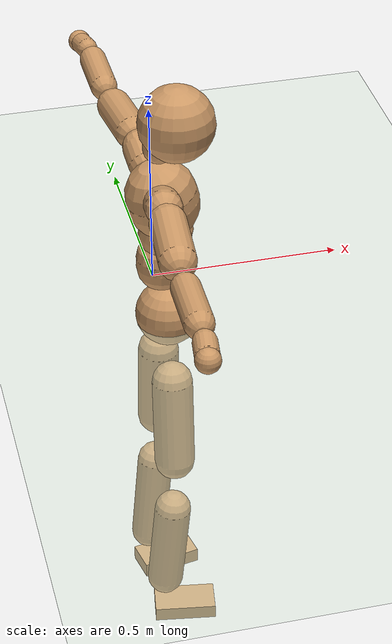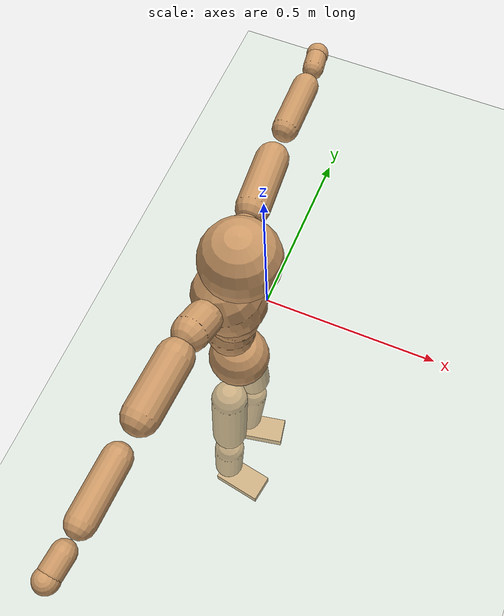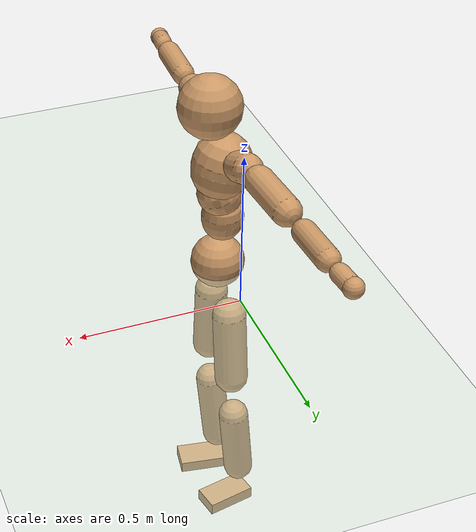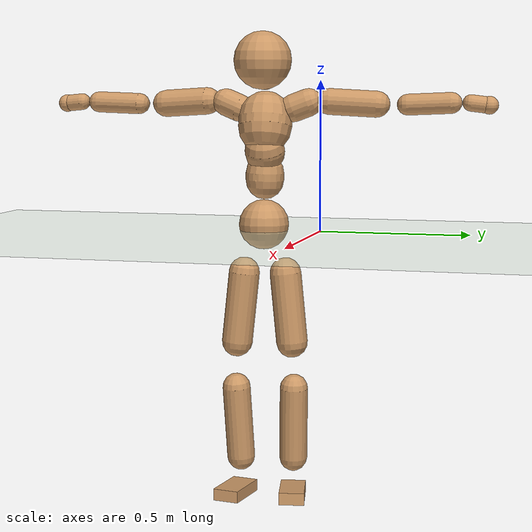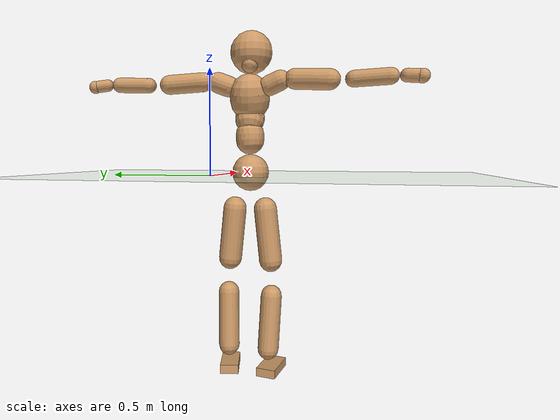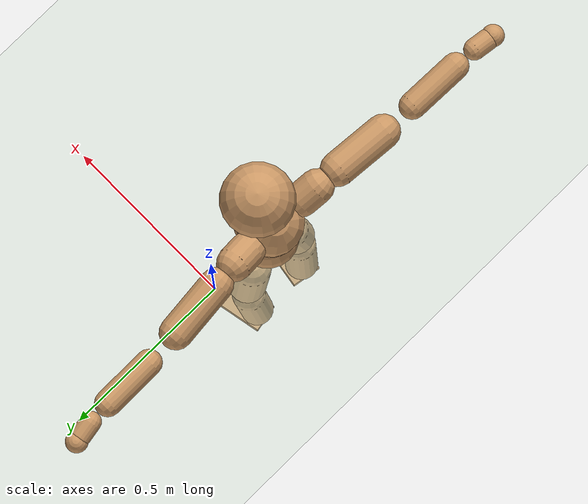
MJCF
<mujoco model="humanoid">
  <compiler coordinate="local" angle="radian"/>
  <default>
    <joint damping="0.0" armature="0.01" stiffness="0.0" limited="true"/>
    <geom conaffinity="1" condim="3" contype="7" margin="0.001" rgba="0.8 0.6 .4 1"/>
  </default>
  <asset>
    <texture type="skybox" builtin="gradient" rgb1=".4 .5 .6" rgb2="0 0 0" width="100" height="100"/>
    <texture builtin="flat" height="1278" mark="cross" markrgb="1 1 1" name="texgeom" random="0.01" rgb1="0.8 0.6 0.4" rgb2="0.8 0.6 0.4" type="cube" width="127"/>
    <texture builtin="checker" height="100" name="texplane" rgb1="0 0 0" rgb2="0.8 0.8 0.8" type="2d" width="100"/>
    <material name="MatPlane" reflectance="0.5" shininess="1" specular="1" texrepeat="60 60" texture="texplane"/>
    <material name="geom" texture="texgeom" texuniform="true"/>
  </asset>
  <worldbody>
    <light cutoff="100" diffuse="1 1 1" dir="-0 0 -1.3" directional="true" exponent="1" pos="0 0 1.3" specular=".1 .1 .1"/>
    <geom conaffinity="1" condim="3" name="floor" pos="0 0 0" rgba="0.8 0.9 0.8 1" size="100 100 .2" type="plane" material="MatPlane"/>
    <body name="Pelvis" pos="-0.0019 -0.1955 0.0183">
      <freejoint name="Pelvis"/>
      <geom type="sphere" contype="1" conaffinity="1" density="500" size="0.0843" pos="0.0000 0.0000 0.0000" name="Pelvis"/>
      <body name="L_Hip" pos="-0.0119 0.0646 -0.0873">
        <joint name="L_Hip_x" type="hinge" pos="0 0 0" axis="1 0 0" stiffness="800" damping="80" armature="0.02" range="-180.0000 180.0000"/>
        <joint name="L_Hip_y" type="hinge" pos="0 0 0" axis="0 1 0" stiffness="800" damping="80" armature="0.02" range="-180.0000 180.0000"/>
        <joint name="L_Hip_z" type="hinge" pos="0 0 0" axis="0 0 1" stiffness="800" damping="80" armature="0.02" range="-180.0000 180.0000"/>
        <geom type="capsule" contype="1" conaffinity="1" density="500" fromto="-0.0005 0.0075 -0.0788 -0.0020 0.0301 -0.3150" size="0.0535" name="L_Hip"/>
        <body name="L_Knee" pos="-0.0025 0.0376 -0.3938">
          <joint name="L_Knee_x" type="hinge" pos="0 0 0" axis="1 0 0" stiffness="800" damping="80" armature="0.02" range="-180.0000 180.0000"/>
          <joint name="L_Knee_y" type="hinge" pos="0 0 0" axis="0 1 0" stiffness="800" damping="80" armature="0.02" range="-180.0000 180.0000"/>
          <joint name="L_Knee_z" type="hinge" pos="0 0 0" axis="0 0 1" stiffness="800" damping="80" armature="0.02" range="-180.0000 180.0000"/>
          <geom type="capsule" contype="1" conaffinity="1" density="500" fromto="-0.0081 -0.0024 -0.0835 -0.0325 -0.0098 -0.3341" size="0.0477" name="L_Knee"/>
          <body name="L_Ankle" pos="-0.0406 -0.0122 -0.4177">
            <joint name="L_Ankle_x" type="hinge" pos="0 0 0" axis="1 0 0" stiffness="800" damping="80" armature="0.02" range="-180.0000 180.0000"/>
            <joint name="L_Ankle_y" type="hinge" pos="0 0 0" axis="0 1 0" stiffness="800" damping="80" armature="0.02" range="-180.0000 180.0000"/>
            <joint name="L_Ankle_z" type="hinge" pos="0 0 0" axis="0 0 1" stiffness="800" damping="80" armature="0.02" range="-180.0000 180.0000"/>
            <geom type="box" contype="1" conaffinity="1" density="500" pos="0.0575 0.0113 -0.0293" size="0.0795 0.0429 0.0209" quat="0.9953 0.0000 0.0000 0.0967" name="L_Ankle"/>
            <body name="L_Toe" pos="0.115 0.0226 -0.0585">
              <joint name="L_Toe_x" type="hinge" pos="0 0 0" axis="1 0 0" stiffness="500" damping="50" armature="0.02" range="-180.0000 180.0000"/>
              <joint name="L_Toe_y" type="hinge" pos="0 0 0" axis="0 1 0" stiffness="500" damping="50" armature="0.02" range="-180.0000 180.0000"/>
              <joint name="L_Toe_z" type="hinge" pos="0 0 0" axis="0 0 1" stiffness="500" damping="50" armature="0.02" range="-180.0000 180.0000"/>
              <geom type="box" contype="1" conaffinity="1" density="500" pos="0.0000 0.0000 0.0292" size="0.0009 0.0022 0.001" quat="0.9947 0.0000 0.0000 0.1033" name="L_Toe"/>
            </body>
          </body>
        </body>
      </body>
      <body name="R_Hip" pos="-0.0071 -0.0629 -0.0867">
        <joint name="R_Hip_x" type="hinge" pos="0 0 0" axis="1 0 0" stiffness="800" damping="80" armature="0.02" range="-180.0000 180.0000"/>
        <joint name="R_Hip_y" type="hinge" pos="0 0 0" axis="0 1 0" stiffness="800" damping="80" armature="0.02" range="-180.0000 180.0000"/>
        <joint name="R_Hip_z" type="hinge" pos="0 0 0" axis="0 0 1" stiffness="800" damping="80" armature="0.02" range="-180.0000 180.0000"/>
        <geom type="capsule" contype="1" conaffinity="1" density="500" fromto="-0.0010 -0.0088 -0.0803 -0.0038 -0.0353 -0.3211" size="0.0527" name="R_Hip"/>
        <body name="R_Knee" pos="-0.0048 -0.0442 -0.4014">
          <joint name="R_Knee_x" type="hinge" pos="0 0 0" axis="1 0 0" stiffness="800" damping="80" armature="0.02" range="-180.0000 180.0000"/>
          <joint name="R_Knee_y" type="hinge" pos="0 0 0" axis="0 1 0" stiffness="800" damping="80" armature="0.02" range="-180.0000 180.0000"/>
          <joint name="R_Knee_z" type="hinge" pos="0 0 0" axis="0 0 1" stiffness="800" damping="80" armature="0.02" range="-180.0000 180.0000"/>
          <geom type="capsule" contype="1" conaffinity="1" density="500" fromto="-0.0074 0.0033 -0.0836 -0.0298 0.0130 -0.3346" size="0.0482" name="R_Knee"/>
          <body name="R_Ankle" pos="-0.0372 0.0163 -0.4182">
            <joint name="R_Ankle_x" type="hinge" pos="0 0 0" axis="1 0 0" stiffness="800" damping="80" armature="0.02" range="-180.0000 180.0000"/>
            <joint name="R_Ankle_y" type="hinge" pos="0 0 0" axis="0 1 0" stiffness="800" damping="80" armature="0.02" range="-180.0000 180.0000"/>
            <joint name="R_Ankle_z" type="hinge" pos="0 0 0" axis="0 0 1" stiffness="800" damping="80" armature="0.02" range="-180.0000 180.0000"/>
            <geom type="box" contype="1" conaffinity="1" density="500" pos="0.0593 -0.0096 -0.0248" size="0.0824 0.0452 0.02" quat="0.9968 0.0000 0.0000 -0.0799" name="R_Ankle"/>
            <body name="R_Toe" pos="0.1185 -0.0191 -0.0496">
              <joint name="R_Toe_x" type="hinge" pos="0 0 0" axis="1 0 0" stiffness="500" damping="50" armature="0.02" range="-180.0000 180.0000"/>
              <joint name="R_Toe_y" type="hinge" pos="0 0 0" axis="0 1 0" stiffness="500" damping="50" armature="0.02" range="-180.0000 180.0000"/>
              <joint name="R_Toe_z" type="hinge" pos="0 0 0" axis="0 0 1" stiffness="500" damping="50" armature="0.02" range="-180.0000 180.0000"/>
              <geom type="box" contype="1" conaffinity="1" density="500" pos="0.0000 0.0000 0.0271" size="0.0009 0.0022 0.0011" quat="0.9975 0.0000 0.0000 -0.0705" name="R_Toe"/>
            </body>
          </body>
        </body>
      </body>
      <body name="Torso" pos="-0.0158 -0.0025 0.0993">
        <joint name="Torso_x" type="hinge" pos="0 0 0" axis="1 0 0" stiffness="1000" damping="100" armature="0.02" range="-180.0000 180.0000"/>
        <joint name="Torso_y" type="hinge" pos="0 0 0" axis="0 1 0" stiffness="1000" damping="100" armature="0.02" range="-180.0000 180.0000"/>
        <joint name="Torso_z" type="hinge" pos="0 0 0" axis="0 0 1" stiffness="1000" damping="100" armature="0.02" range="-180.0000 180.0000"/>
        <geom type="capsule" contype="1" conaffinity="1" density="500" fromto="0.0015 0.0025 0.0738 0.0010 0.0016 0.0492" size="0.0646" name="Torso"/>
        <body name="Spine" pos="0.0026 0.0041 0.123">
          <joint name="Spine_x" type="hinge" pos="0 0 0" axis="1 0 0" stiffness="1000" damping="100" armature="0.02" range="-180.0000 180.0000"/>
          <joint name="Spine_y" type="hinge" pos="0 0 0" axis="0 1 0" stiffness="1000" damping="100" armature="0.02" range="-180.0000 180.0000"/>
          <joint name="Spine_z" type="hinge" pos="0 0 0" axis="0 0 1" stiffness="1000" damping="100" armature="0.02" range="-180.0000 180.0000"/>
          <geom type="capsule" contype="1" conaffinity="1" density="500" fromto="0.0134 0.0012 0.0292 0.0089 0.0008 0.0194" size="0.0673" name="Spine"/>
          <body name="Chest" pos="0.0224 0.002 0.0486">
            <joint name="Chest_x" type="hinge" pos="0 0 0" axis="1 0 0" stiffness="1000" damping="100" armature="0.02" range="-180.0000 180.0000"/>
            <joint name="Chest_y" type="hinge" pos="0 0 0" axis="0 1 0" stiffness="1000" damping="100" armature="0.02" range="-180.0000 180.0000"/>
            <joint name="Chest_z" type="hinge" pos="0 0 0" axis="0 0 1" stiffness="1000" damping="100" armature="0.02" range="-180.0000 180.0000"/>
            <geom type="capsule" contype="1" conaffinity="1" density="500" fromto="-0.0214 -0.0015 0.0856 -0.0143 -0.0010 0.0570" size="0.0905" name="Chest"/>
            <body name="Neck" pos="-0.0366 -0.0047 0.2047">
              <joint name="Neck_x" type="hinge" pos="0 0 0" axis="1 0 0" stiffness="500" damping="50" armature="0.02" range="-180.0000 180.0000"/>
              <joint name="Neck_y" type="hinge" pos="0 0 0" axis="0 1 0" stiffness="500" damping="50" armature="0.02" range="-180.0000 180.0000"/>
              <joint name="Neck_z" type="hinge" pos="0 0 0" axis="0 0 1" stiffness="500" damping="50" armature="0.02" range="-180.0000 180.0000"/>
              <geom type="capsule" contype="1" conaffinity="1" density="500" fromto="0.0114 0.0010 0.0145 0.0456 0.0040 0.0579" size="0.0402" name="Neck"/>
              <body name="Head" pos="0.0569 0.005 0.0723">
                <joint name="Head_x" type="hinge" pos="0 0 0" axis="1 0 0" stiffness="500" damping="50" armature="0.02" range="-180.0000 180.0000"/>
                <joint name="Head_y" type="hinge" pos="0 0 0" axis="0 1 0" stiffness="500" damping="50" armature="0.02" range="-180.0000 180.0000"/>
                <joint name="Head_z" type="hinge" pos="0 0 0" axis="0 0 1" stiffness="500" damping="50" armature="0.02" range="-180.0000 180.0000"/>
                <geom type="sphere" contype="1" conaffinity="1" density="500" size="0.0965" pos="0.0000 0.0000 0.0000" name="Head"/>
              </body>
            </body>
            <body name="L_Thorax" pos="-0.0335 0.075 0.1126">
              <joint name="L_Thorax_x" type="hinge" pos="0 0 0" axis="1 0 0" stiffness="500" damping="50" armature="0.02" range="-180.0000 180.0000"/>
              <joint name="L_Thorax_y" type="hinge" pos="0 0 0" axis="0 1 0" stiffness="500" damping="50" armature="0.02" range="-180.0000 180.0000"/>
              <joint name="L_Thorax_z" type="hinge" pos="0 0 0" axis="0 0 1" stiffness="500" damping="50" armature="0.02" range="-180.0000 180.0000"/>
              <geom type="capsule" contype="1" conaffinity="1" density="500" fromto="-0.0015 0.0167 0.0063 -0.0059 0.0667 0.0253" size="0.047" name="L_Thorax"/>
              <body name="L_Shoulder" pos="-0.0074 0.0833 0.0316">
                <joint name="L_Shoulder_x" type="hinge" pos="0 0 0" axis="1 0 0" stiffness="500" damping="50" armature="0.02" range="-720.0000 720.0000"/>
                <joint name="L_Shoulder_y" type="hinge" pos="0 0 0" axis="0 1 0" stiffness="500" damping="50" armature="0.02" range="-720.0000 720.0000"/>
                <joint name="L_Shoulder_z" type="hinge" pos="0 0 0" axis="0 0 1" stiffness="500" damping="50" armature="0.02" range="-720.0000 720.0000"/>
                <geom type="capsule" contype="1" conaffinity="1" density="500" fromto="-0.0051 0.0528 -0.0029 -0.0203 0.2114 -0.0116" size="0.0438" name="L_Shoulder"/>
                <body name="L_Elbow" pos="-0.0254 0.2642 -0.0146">
                  <joint name="L_Elbow_x" type="hinge" pos="0 0 0" axis="1 0 0" stiffness="500" damping="50" armature="0.02" range="-720.0000 720.0000"/>
                  <joint name="L_Elbow_y" type="hinge" pos="0 0 0" axis="0 1 0" stiffness="500" damping="50" armature="0.02" range="-720.0000 720.0000"/>
                  <joint name="L_Elbow_z" type="hinge" pos="0 0 0" axis="0 0 1" stiffness="500" damping="50" armature="0.02" range="-720.0000 720.0000"/>
                  <geom type="capsule" contype="1" conaffinity="1" density="500" fromto="-0.0006 0.0482 0.0020 -0.0025 0.1927 0.0082" size="0.0349" name="L_Elbow"/>
                  <body name="L_Wrist" pos="-0.0031 0.2409 0.0102">
                    <joint name="L_Wrist_x" type="hinge" pos="0 0 0" axis="1 0 0" stiffness="300" damping="30" armature="0.02" range="-180.0000 180.0000"/>
                    <joint name="L_Wrist_y" type="hinge" pos="0 0 0" axis="0 1 0" stiffness="300" damping="30" armature="0.02" range="-180.0000 180.0000"/>
                    <joint name="L_Wrist_z" type="hinge" pos="0 0 0" axis="0 0 1" stiffness="300" damping="30" armature="0.02" range="-180.0000 180.0000"/>
                    <geom type="capsule" contype="1" conaffinity="1" density="500" fromto="-0.0025 0.0148 -0.0018 -0.0100 0.0592 -0.0073" size="0.0276" name="L_Wrist"/>
                    <body name="L_Hand" pos="-0.0125 0.074 -0.0092">
                      <joint name="L_Hand_x" type="hinge" pos="0 0 0" axis="1 0 0" stiffness="300" damping="30" armature="0.02" range="-180.0000 180.0000"/>
                      <joint name="L_Hand_y" type="hinge" pos="0 0 0" axis="0 1 0" stiffness="300" damping="30" armature="0.02" range="-180.0000 180.0000"/>
                      <joint name="L_Hand_z" type="hinge" pos="0 0 0" axis="0 0 1" stiffness="300" damping="30" armature="0.02" range="-180.0000 180.0000"/>
                      <geom type="sphere" contype="1" conaffinity="1" density="500" size="0.0298" pos="0.0000 0.0000 0.0000" name="L_Hand"/>
                    </body>
                  </body>
                </body>
              </body>
            </body>
            <body name="R_Thorax" pos="-0.0371 -0.0776 0.1106">
              <joint name="R_Thorax_x" type="hinge" pos="0 0 0" axis="1 0 0" stiffness="500" damping="50" armature="0.02" range="-180.0000 180.0000"/>
              <joint name="R_Thorax_y" type="hinge" pos="0 0 0" axis="0 1 0" stiffness="500" damping="50" armature="0.02" range="-180.0000 180.0000"/>
              <joint name="R_Thorax_z" type="hinge" pos="0 0 0" axis="0 0 1" stiffness="500" damping="50" armature="0.02" range="-180.0000 180.0000"/>
              <geom type="capsule" contype="1" conaffinity="1" density="500" fromto="-0.0020 -0.0170 0.0068 -0.0080 -0.0678 0.0272" size="0.0458" name="R_Thorax"/>
              <body name="R_Shoulder" pos="-0.0101 -0.0848 0.034">
                <joint name="R_Shoulder_x" type="hinge" pos="0 0 0" axis="1 0 0" stiffness="500" damping="50" armature="0.02" range="-720.0000 720.0000"/>
                <joint name="R_Shoulder_y" type="hinge" pos="0 0 0" axis="0 1 0" stiffness="500" damping="50" armature="0.02" range="-720.0000 720.0000"/>
                <joint name="R_Shoulder_z" type="hinge" pos="0 0 0" axis="0 0 1" stiffness="500" damping="50" armature="0.02" range="-720.0000 720.0000"/>
                <geom type="capsule" contype="1" conaffinity="1" density="500" fromto="-0.0038 -0.0504 -0.0031 -0.0150 -0.2015 -0.0124" size="0.0458" name="R_Shoulder"/>
                <body name="R_Elbow" pos="-0.0188 -0.2519 -0.0155">
                  <joint name="R_Elbow_x" type="hinge" pos="0 0 0" axis="1 0 0" stiffness="500" damping="50" armature="0.02" range="-720.0000 720.0000"/>
                  <joint name="R_Elbow_y" type="hinge" pos="0 0 0" axis="0 1 0" stiffness="500" damping="50" armature="0.02" range="-720.0000 720.0000"/>
                  <joint name="R_Elbow_z" type="hinge" pos="0 0 0" axis="0 0 1" stiffness="500" damping="50" armature="0.02" range="-720.0000 720.0000"/>
                  <geom type="capsule" contype="1" conaffinity="1" density="500" fromto="-0.0015 -0.0499 0.0017 -0.0059 -0.1996 0.0068" size="0.0356" name="R_Elbow"/>
                  <body name="R_Wrist" pos="-0.0074 -0.2495 0.0085">
                    <joint name="R_Wrist_x" type="hinge" pos="0 0 0" axis="1 0 0" stiffness="300" damping="30" armature="0.02" range="-180.0000 180.0000"/>
                    <joint name="R_Wrist_y" type="hinge" pos="0 0 0" axis="0 1 0" stiffness="300" damping="30" armature="0.02" range="-180.0000 180.0000"/>
                    <joint name="R_Wrist_z" type="hinge" pos="0 0 0" axis="0 0 1" stiffness="300" damping="30" armature="0.02" range="-180.0000 180.0000"/>
                    <geom type="capsule" contype="1" conaffinity="1" density="500" fromto="-0.0019 -0.0149 -0.0014 -0.0076 -0.0598 -0.0055" size="0.0285" name="R_Wrist"/>
                    <body name="R_Hand" pos="-0.0094 -0.0747 -0.0069">
                      <joint name="R_Hand_x" type="hinge" pos="0 0 0" axis="1 0 0" stiffness="300" damping="30" armature="0.02" range="-180.0000 180.0000"/>
                      <joint name="R_Hand_y" type="hinge" pos="0 0 0" axis="0 1 0" stiffness="300" damping="30" armature="0.02" range="-180.0000 180.0000"/>
                      <joint name="R_Hand_z" type="hinge" pos="0 0 0" axis="0 0 1" stiffness="300" damping="30" armature="0.02" range="-180.0000 180.0000"/>
                      <geom type="sphere" contype="1" conaffinity="1" density="500" size="0.0300" pos="0.0000 0.0000 0.0000" name="R_Hand"/>
                    </body>
                  </body>
                </body>
              </body>
            </body>
          </body>
        </body>
      </body>
    </body>
  </worldbody>
  <actuator>
    <motor name="L_Hip_x" joint="L_Hip_x" gear="500"/>
    <motor name="L_Hip_y" joint="L_Hip_y" gear="500"/>
    <motor name="L_Hip_z" joint="L_Hip_z" gear="500"/>
    <motor name="L_Knee_x" joint="L_Knee_x" gear="500"/>
    <motor name="L_Knee_y" joint="L_Knee_y" gear="500"/>
    <motor name="L_Knee_z" joint="L_Knee_z" gear="500"/>
    <motor name="L_Ankle_x" joint="L_Ankle_x" gear="500"/>
    <motor name="L_Ankle_y" joint="L_Ankle_y" gear="500"/>
    <motor name="L_Ankle_z" joint="L_Ankle_z" gear="500"/>
    <motor name="L_Toe_x" joint="L_Toe_x" gear="500"/>
    <motor name="L_Toe_y" joint="L_Toe_y" gear="500"/>
    <motor name="L_Toe_z" joint="L_Toe_z" gear="500"/>
    <motor name="R_Hip_x" joint="R_Hip_x" gear="500"/>
    <motor name="R_Hip_y" joint="R_Hip_y" gear="500"/>
    <motor name="R_Hip_z" joint="R_Hip_z" gear="500"/>
    <motor name="R_Knee_x" joint="R_Knee_x" gear="500"/>
    <motor name="R_Knee_y" joint="R_Knee_y" gear="500"/>
    <motor name="R_Knee_z" joint="R_Knee_z" gear="500"/>
    <motor name="R_Ankle_x" joint="R_Ankle_x" gear="500"/>
    <motor name="R_Ankle_y" joint="R_Ankle_y" gear="500"/>
    <motor name="R_Ankle_z" joint="R_Ankle_z" gear="500"/>
    <motor name="R_Toe_x" joint="R_Toe_x" gear="500"/>
    <motor name="R_Toe_y" joint="R_Toe_y" gear="500"/>
    <motor name="R_Toe_z" joint="R_Toe_z" gear="500"/>
    <motor name="Torso_x" joint="Torso_x" gear="500"/>
    <motor name="Torso_y" joint="Torso_y" gear="500"/>
    <motor name="Torso_z" joint="Torso_z" gear="500"/>
    <motor name="Spine_x" joint="Spine_x" gear="500"/>
    <motor name="Spine_y" joint="Spine_y" gear="500"/>
    <motor name="Spine_z" joint="Spine_z" gear="500"/>
    <motor name="Chest_x" joint="Chest_x" gear="500"/>
    <motor name="Chest_y" joint="Chest_y" gear="500"/>
    <motor name="Chest_z" joint="Chest_z" gear="500"/>
    <motor name="Neck_x" joint="Neck_x" gear="500"/>
    <motor name="Neck_y" joint="Neck_y" gear="500"/>
    <motor name="Neck_z" joint="Neck_z" gear="500"/>
    <motor name="Head_x" joint="Head_x" gear="500"/>
    <motor name="Head_y" joint="Head_y" gear="500"/>
    <motor name="Head_z" joint="Head_z" gear="500"/>
    <motor name="L_Thorax_x" joint="L_Thorax_x" gear="500"/>
    <motor name="L_Thorax_y" joint="L_Thorax_y" gear="500"/>
    <motor name="L_Thorax_z" joint="L_Thorax_z" gear="500"/>
    <motor name="L_Shoulder_x" joint="L_Shoulder_x" gear="500"/>
    <motor name="L_Shoulder_y" joint="L_Shoulder_y" gear="500"/>
    <motor name="L_Shoulder_z" joint="L_Shoulder_z" gear="500"/>
    <motor name="L_Elbow_x" joint="L_Elbow_x" gear="500"/>
    <motor name="L_Elbow_y" joint="L_Elbow_y" gear="500"/>
    <motor name="L_Elbow_z" joint="L_Elbow_z" gear="500"/>
    <motor name="L_Wrist_x" joint="L_Wrist_x" gear="500"/>
    <motor name="L_Wrist_y" joint="L_Wrist_y" gear="500"/>
    <motor name="L_Wrist_z" joint="L_Wrist_z" gear="500"/>
    <motor name="L_Hand_x" joint="L_Hand_x" gear="500"/>
    <motor name="L_Hand_y" joint="L_Hand_y" gear="500"/>
    <motor name="L_Hand_z" joint="L_Hand_z" gear="500"/>
    <motor name="R_Thorax_x" joint="R_Thorax_x" gear="500"/>
    <motor name="R_Thorax_y" joint="R_Thorax_y" gear="500"/>
    <motor name="R_Thorax_z" joint="R_Thorax_z" gear="500"/>
    <motor name="R_Shoulder_x" joint="R_Shoulder_x" gear="500"/>
    <motor name="R_Shoulder_y" joint="R_Shoulder_y" gear="500"/>
    <motor name="R_Shoulder_z" joint="R_Shoulder_z" gear="500"/>
    <motor name="R_Elbow_x" joint="R_Elbow_x" gear="500"/>
    <motor name="R_Elbow_y" joint="R_Elbow_y" gear="500"/>
    <motor name="R_Elbow_z" joint="R_Elbow_z" gear="500"/>
    <motor name="R_Wrist_x" joint="R_Wrist_x" gear="500"/>
    <motor name="R_Wrist_y" joint="R_Wrist_y" gear="500"/>
    <motor name="R_Wrist_z" joint="R_Wrist_z" gear="500"/>
    <motor name="R_Hand_x" joint="R_Hand_x" gear="500"/>
    <motor name="R_Hand_y" joint="R_Hand_y" gear="500"/>
    <motor name="R_Hand_z" joint="R_Hand_z" gear="500"/>
  </actuator>
  <contact>
    <exclude body1="Torso" body2="Chest"/>
    <exclude body1="Head" body2="Chest"/>
    <exclude body1="R_Knee" body2="R_Toe"/>
    <exclude body1="R_Knee" body2="L_Ankle"/>
    <exclude body1="R_Knee" body2="L_Toe"/>
    <exclude body1="L_Knee" body2="L_Toe"/>
    <exclude body1="L_Knee" body2="R_Ankle"/>
    <exclude body1="L_Knee" body2="R_Toe"/>
    <exclude body1="L_Shoulder" body2="Chest"/>
    <exclude body1="R_Shoulder" body2="Chest"/>
  </contact>
  <sensor/>
  <size njmax="700" nconmax="700"/>
</mujoco>
